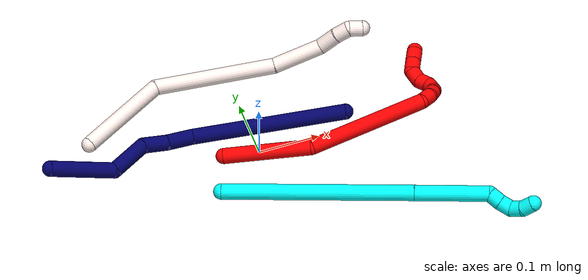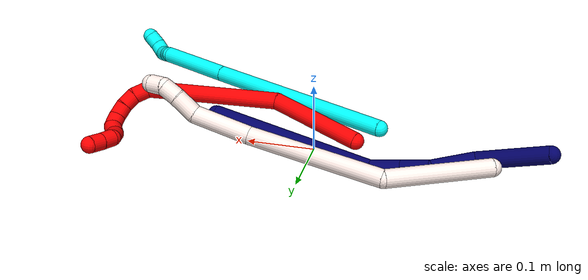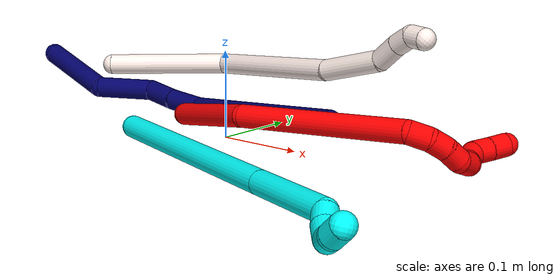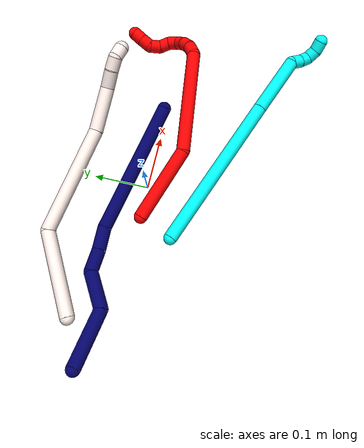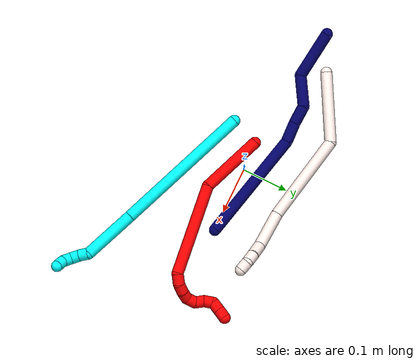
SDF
<sdf version="1.7">
 <world name="default">
  <model name="photoneo_s_sensor">
   <static>1</static>
   <pose>0 0 2 1.57079 1.57079 3.14159</pose>
   <link name="link">
    <inertial><mass>0.1</mass></inertial>
    <sensor name="sensor" type="depth">
     <update_rate>30</update_rate>
     <camera>
      <horizontal_fov>1.22</horizontal_fov>
      <image><width>1920</width><height>1200</height><format>B8G8R8</format></image>
      <clip><near>0.1</near><far>4</far></clip>
      <depth_camera><output>points</output></depth_camera>
     </camera>
     <plugin name="camera_plugin" filename="libgazebo_ros_depth_camera.so">
      <baseline>0.2</baseline>
      <alwaysOn>1</alwaysOn>
      <updateRate>0.0</updateRate>
      <cameraName>camera_ir</cameraName>
      <imageTopicName>/camera/color/image_raw</imageTopicName>
      <cameraInfoTopicName>/camera/color/camera_info</cameraInfoTopicName>
      <depthImageTopicName>/camera/depth/image_raw</depthImageTopicName>
      <depthImageCameraInfoTopicName>/camera/depth/camera_info</depthImageCameraInfoTopicName>
      <pointCloudTopicName>/camera/depth/points</pointCloudTopicName>
      <frameName>fr_optical</frameName>
      <pointCloudCutoff>0.1</pointCloudCutoff>
      <pointCloudCutoffMax>2.0</pointCloudCutoffMax>
      <distortionK1>0</distortionK1>
      <distortionK2>0</distortionK2>
      <distortionK3>0</distortionK3>
      <distortionT1>0</distortionT1>
      <distortionT2>0</distortionT2>
      <CxPrime>0</CxPrime>
      <Cx>0</Cx>
      <Cy>0</Cy>
      <focalLength>0</focalLength>
      <hackBaseline>0</hackBaseline>
     </plugin>
    </sensor>
   </link>
  </model>
  <model name="bin">
   <static>1</static>
   <link name="bottom">
    <collision name="collision-bottom">
     <pose>0 0 -0.01 0 -0 0</pose>
     <geometry><box><size>0.8 0.6 0.02</size></box></geometry>
     <surface>
      <friction><ode><mu>100</mu><mu2>100</mu2></ode></friction>
      <contact><collide_bitmask>65535</collide_bitmask></contact>
     </surface>
    </collision>
   </link>
   <link name="west_wall">
    <collision name="collision-west_wall">
     <pose>-0.41 0 0.1 0 -0 0</pose>
     <geometry><box><size>0.02 0.6 0.2</size></box></geometry>
     <surface>
      <friction><ode><mu>100</mu><mu2>100</mu2></ode></friction>
      <contact><collide_bitmask>65535</collide_bitmask></contact>
     </surface>
    </collision>
   </link>
   <link name="east_wall">
    <collision name="collision-east_wall">
     <pose>0.41 0 0.1 0 -0 0</pose>
     <geometry><box><size>0.02 0.6 0.2</size></box></geometry>
     <surface>
      <friction><ode><mu>100</mu><mu2>100</mu2></ode></friction>
      <contact><collide_bitmask>65535</collide_bitmask></contact>
     </surface>
    </collision>
   </link>
   <link name="south_wall">
    <collision name="collision-south_wall">
     <pose>0 -0.31 0.1 0 -0 0</pose>
     <geometry><box><size>0.8 0.02 0.2</size></box></geometry>
     <surface>
      <friction><ode><mu>100</mu><mu2>100</mu2></ode></friction>
      <contact><collide_bitmask>65535</collide_bitmask></contact>
     </surface>
    </collision>
   </link>
   <link name="north_wall">
    <collision name="collision-north_wall">
     <pose>0 0.31 0.1 0 -0 0</pose>
     <geometry><box><size>0.8 0.02 0.2</size></box></geometry>
     <surface>
      <friction><ode><mu>100</mu><mu2>100</mu2></ode></friction>
      <contact><collide_bitmask>65535</collide_bitmask></contact>
     </surface>
    </collision>
   </link>
  </model>
  <model name="2">
   <static>0</static>
   <link name="2">
    <collision name="collision-cylinder-e_1_1_4">
     <pose>0.027513 -0.011588 0.063522 0.180439 0.402797 0.036936</pose>
     <geometry><cylinder><radius>0.0125</radius><length>0.140375</length></cylinder></geometry>
     <surface>
      <friction><ode><mu>1.16</mu><mu2>1.16</mu2><slip1>0</slip1><slip2>0</slip2></ode></friction>
      <contact><ode><kp>1e+06</kp><kd>1</kd><max_vel>0</max_vel><min_depth>0.001</min_depth></ode></contact>
     </surface>
    </collision>
    <visual name="visual-cylinder-e_1_1_4">
     <pose>0.027513 -0.011588 0.063522 0.180439 0.402797 0.036936</pose>
     <geometry><cylinder><radius>0.0125</radius><length>0.140375</length></cylinder></geometry>
     <material><ambient>1 0 0 1</ambient></material>
    </visual>
    <collision name="collision-cylinder-e_2_4_5">
     <pose>0.054863 -0.012601 0.224173 -0.10845 -0.001672 9.1e-05</pose>
     <geometry><cylinder><radius>0.0125</radius><length>0.195407</length></cylinder></geometry>
     <surface>
      <friction><ode><mu>1.16</mu><mu2>1.16</mu2><slip1>0</slip1><slip2>0</slip2></ode></friction>
      <contact><ode><kp>1e+06</kp><kd>1</kd><max_vel>0</max_vel><min_depth>0.001</min_depth></ode></contact>
     </surface>
    </collision>
    <visual name="visual-cylinder-e_2_4_5">
     <pose>0.054863 -0.012601 0.224173 -0.10845 -0.001672 9.1e-05</pose>
     <geometry><cylinder><radius>0.0125</radius><length>0.195407</length></cylinder></geometry>
     <material><ambient>1 0 0 1</ambient></material>
    </visual>
    <collision name="collision-cylinder-e_3_5_6">
     <pose>0.051023 0.004199 0.330494 -0.595244 -0.31981 0.09886</pose>
     <geometry><cylinder><radius>0.0125</radius><length>0.023388</length></cylinder></geometry>
     <surface>
      <friction><ode><mu>1.16</mu><mu2>1.16</mu2><slip1>0</slip1><slip2>0</slip2></ode></friction>
      <contact><ode><kp>1e+06</kp><kd>1</kd><max_vel>0</max_vel><min_depth>0.001</min_depth></ode></contact>
     </surface>
    </collision>
    <visual name="visual-cylinder-e_3_5_6">
     <pose>0.051023 0.004199 0.330494 -0.595244 -0.31981 0.09886</pose>
     <geometry><cylinder><radius>0.0125</radius><length>0.023388</length></cylinder></geometry>
     <material><ambient>1 0 0 1</ambient></material>
    </visual>
    <collision name="collision-cylinder-e_4_6_7">
     <pose>0.0431 0.01813 0.34488 -0.977804 -0.428588 0.230528</pose>
     <geometry><cylinder><radius>0.0125</radius><length>0.020435</length></cylinder></geometry>
     <surface>
      <friction><ode><mu>1.16</mu><mu2>1.16</mu2><slip1>0</slip1><slip2>0</slip2></ode></friction>
      <contact><ode><kp>1e+06</kp><kd>1</kd><max_vel>0</max_vel><min_depth>0.001</min_depth></ode></contact>
     </surface>
    </collision>
    <visual name="visual-cylinder-e_4_6_7">
     <pose>0.0431 0.01813 0.34488 -0.977804 -0.428588 0.230528</pose>
     <geometry><cylinder><radius>0.0125</radius><length>0.020435</length></cylinder></geometry>
     <material><ambient>1 0 0 1</ambient></material>
    </visual>
    <collision name="collision-cylinder-e_5_7_8">
     <pose>0.035002 0.034515 0.353246 -1.22029 -0.395024 0.278019</pose>
     <geometry><cylinder><radius>0.0125</radius><length>0.02002</length></cylinder></geometry>
     <surface>
      <friction><ode><mu>1.16</mu><mu2>1.16</mu2><slip1>0</slip1><slip2>0</slip2></ode></friction>
      <contact><ode><kp>1e+06</kp><kd>1</kd><max_vel>0</max_vel><min_depth>0.001</min_depth></ode></contact>
     </surface>
    </collision>
    <visual name="visual-cylinder-e_5_7_8">
     <pose>0.035002 0.034515 0.353246 -1.22029 -0.395024 0.278019</pose>
     <geometry><cylinder><radius>0.0125</radius><length>0.02002</length></cylinder></geometry>
     <material><ambient>1 0 0 1</ambient></material>
    </visual>
    <collision name="collision-cylinder-e_6_8_9">
     <pose>0.02307 0.049292 0.356631 -1.53601 -0.923798 0.896325</pose>
     <geometry><cylinder><radius>0.0125</radius><length>0.020252</length></cylinder></geometry>
     <surface>
      <friction><ode><mu>1.16</mu><mu2>1.16</mu2><slip1>0</slip1><slip2>0</slip2></ode></friction>
      <contact><ode><kp>1e+06</kp><kd>1</kd><max_vel>0</max_vel><min_depth>0.001</min_depth></ode></contact>
     </surface>
    </collision>
    <visual name="visual-cylinder-e_6_8_9">
     <pose>0.02307 0.049292 0.356631 -1.53601 -0.923798 0.896325</pose>
     <geometry><cylinder><radius>0.0125</radius><length>0.020252</length></cylinder></geometry>
     <material><ambient>1 0 0 1</ambient></material>
    </visual>
    <collision name="collision-cylinder-e_7_9_10">
     <pose>0.006801 0.058241 0.351852 -2.62303 -0.958901 2.19807</pose>
     <geometry><cylinder><radius>0.0125</radius><length>0.020009</length></cylinder></geometry>
     <surface>
      <friction><ode><mu>1.16</mu><mu2>1.16</mu2><slip1>0</slip1><slip2>0</slip2></ode></friction>
      <contact><ode><kp>1e+06</kp><kd>1</kd><max_vel>0</max_vel><min_depth>0.001</min_depth></ode></contact>
     </surface>
    </collision>
    <visual name="visual-cylinder-e_7_9_10">
     <pose>0.006801 0.058241 0.351852 -2.62303 -0.958901 2.19807</pose>
     <geometry><cylinder><radius>0.0125</radius><length>0.020009</length></cylinder></geometry>
     <material><ambient>1 0 0 1</ambient></material>
    </visual>
    <collision name="collision-cylinder-e_8_10_11">
     <pose>-0.011347 0.061697 0.345639 -2.67963 -1.4347 2.61495</pose>
     <geometry><cylinder><radius>0.0125</radius><length>0.020103</length></cylinder></geometry>
     <surface>
      <friction><ode><mu>1.16</mu><mu2>1.16</mu2><slip1>0</slip1><slip2>0</slip2></ode></friction>
      <contact><ode><kp>1e+06</kp><kd>1</kd><max_vel>0</max_vel><min_depth>0.001</min_depth></ode></contact>
     </surface>
    </collision>
    <visual name="visual-cylinder-e_8_10_11">
     <pose>-0.011347 0.061697 0.345639 -2.67963 -1.4347 2.61495</pose>
     <geometry><cylinder><radius>0.0125</radius><length>0.020103</length></cylinder></geometry>
     <material><ambient>1 0 0 1</ambient></material>
    </visual>
    <collision name="collision-cylinder-e_9_11_12">
     <pose>-0.029478 0.06444 0.34978 -0.378973 -0.955947 0.198056</pose>
     <geometry><cylinder><radius>0.0125</radius><length>0.020009</length></cylinder></geometry>
     <surface>
      <friction><ode><mu>1.16</mu><mu2>1.16</mu2><slip1>0</slip1><slip2>0</slip2></ode></friction>
      <contact><ode><kp>1e+06</kp><kd>1</kd><max_vel>0</max_vel><min_depth>0.001</min_depth></ode></contact>
     </surface>
    </collision>
    <visual name="visual-cylinder-e_9_11_12">
     <pose>-0.029478 0.06444 0.34978 -0.378973 -0.955947 0.198056</pose>
     <geometry><cylinder><radius>0.0125</radius><length>0.020009</length></cylinder></geometry>
     <material><ambient>1 0 0 1</ambient></material>
    </visual>
    <collision name="collision-cylinder-e_10_12_2">
     <pose>-0.045762 0.068269 0.360739 -0.293814 -0.946145 0.151188</pose>
     <geometry><cylinder><radius>0.0125</radius><length>0.020001</length></cylinder></geometry>
     <surface>
      <friction><ode><mu>1.16</mu><mu2>1.16</mu2><slip1>0</slip1><slip2>0</slip2></ode></friction>
      <contact><ode><kp>1e+06</kp><kd>1</kd><max_vel>0</max_vel><min_depth>0.001</min_depth></ode></contact>
     </surface>
    </collision>
    <visual name="visual-cylinder-e_10_12_2">
     <pose>-0.045762 0.068269 0.360739 -0.293814 -0.946145 0.151188</pose>
     <geometry><cylinder><radius>0.0125</radius><length>0.020001</length></cylinder></geometry>
     <material><ambient>1 0 0 1</ambient></material>
    </visual>
    <collision name="collision-sphere-2">
     <pose>-0.053874 0.069963 0.366337 0 -0 0</pose>
     <geometry><sphere><radius>0.0125</radius></sphere></geometry>
     <surface>
      <friction><ode><mu>1.16</mu><mu2>1.16</mu2><slip1>0</slip1><slip2>0</slip2></ode></friction>
      <contact><ode><kp>1e+06</kp><kd>1</kd><max_vel>0</max_vel><min_depth>0.001</min_depth></ode></contact>
     </surface>
    </collision>
    <visual name="visual-sphere-2">
     <pose>-0.053874 0.069963 0.366337 0 -0 0</pose>
     <geometry><sphere><radius>0.0125</radius></sphere></geometry>
     <material><ambient>1 0 0 1</ambient></material>
    </visual>
    <collision name="collision-sphere-12">
     <pose>-0.03765 0.066575 0.355142 0 -0 0</pose>
     <geometry><sphere><radius>0.0125</radius></sphere></geometry>
     <surface>
      <friction><ode><mu>1.16</mu><mu2>1.16</mu2><slip1>0</slip1><slip2>0</slip2></ode></friction>
      <contact><ode><kp>1e+06</kp><kd>1</kd><max_vel>0</max_vel><min_depth>0.001</min_depth></ode></contact>
     </surface>
    </collision>
    <visual name="visual-sphere-12">
     <pose>-0.03765 0.066575 0.355142 0 -0 0</pose>
     <geometry><sphere><radius>0.0125</radius></sphere></geometry>
     <material><ambient>1 0 0 1</ambient></material>
    </visual>
    <collision name="collision-sphere-11">
     <pose>-0.021306 0.062305 0.344419 0 -0 0</pose>
     <geometry><sphere><radius>0.0125</radius></sphere></geometry>
     <surface>
      <friction><ode><mu>1.16</mu><mu2>1.16</mu2><slip1>0</slip1><slip2>0</slip2></ode></friction>
      <contact><ode><kp>1e+06</kp><kd>1</kd><max_vel>0</max_vel><min_depth>0.001</min_depth></ode></contact>
     </surface>
    </collision>
    <visual name="visual-sphere-11">
     <pose>-0.021306 0.062305 0.344419 0 -0 0</pose>
     <geometry><sphere><radius>0.0125</radius></sphere></geometry>
     <material><ambient>1 0 0 1</ambient></material>
    </visual>
    <collision name="collision-sphere-10">
     <pose>-0.001388 0.061089 0.34686 0 -0 0</pose>
     <geometry><sphere><radius>0.0125</radius></sphere></geometry>
     <surface>
      <friction><ode><mu>1.16</mu><mu2>1.16</mu2><slip1>0</slip1><slip2>0</slip2></ode></friction>
      <contact><ode><kp>1e+06</kp><kd>1</kd><max_vel>0</max_vel><min_depth>0.001</min_depth></ode></contact>
     </surface>
    </collision>
    <visual name="visual-sphere-10">
     <pose>-0.001388 0.061089 0.34686 0 -0 0</pose>
     <geometry><sphere><radius>0.0125</radius></sphere></geometry>
     <material><ambient>1 0 0 1</ambient></material>
    </visual>
    <collision name="collision-sphere-9">
     <pose>0.014991 0.055393 0.356843 0 -0 0</pose>
     <geometry><sphere><radius>0.0125</radius></sphere></geometry>
     <surface>
      <friction><ode><mu>1.16</mu><mu2>1.16</mu2><slip1>0</slip1><slip2>0</slip2></ode></friction>
      <contact><ode><kp>1e+06</kp><kd>1</kd><max_vel>0</max_vel><min_depth>0.001</min_depth></ode></contact>
     </surface>
    </collision>
    <visual name="visual-sphere-9">
     <pose>0.014991 0.055393 0.356843 0 -0 0</pose>
     <geometry><sphere><radius>0.0125</radius></sphere></geometry>
     <material><ambient>1 0 0 1</ambient></material>
    </visual>
    <collision name="collision-sphere-4">
     <pose>0.055026 -0.023176 0.127044 0 -0 0</pose>
     <geometry><sphere><radius>0.0125</radius></sphere></geometry>
     <surface>
      <friction><ode><mu>1.16</mu><mu2>1.16</mu2><slip1>0</slip1><slip2>0</slip2></ode></friction>
      <contact><ode><kp>1e+06</kp><kd>1</kd><max_vel>0</max_vel><min_depth>0.001</min_depth></ode></contact>
     </surface>
    </collision>
    <visual name="visual-sphere-4">
     <pose>0.055026 -0.023176 0.127044 0 -0 0</pose>
     <geometry><sphere><radius>0.0125</radius></sphere></geometry>
     <material><ambient>1 0 0 1</ambient></material>
    </visual>
    <collision name="collision-sphere-1">
     <geometry><sphere><radius>0.0125</radius></sphere></geometry>
     <surface>
      <friction><ode><mu>1.16</mu><mu2>1.16</mu2><slip1>0</slip1><slip2>0</slip2></ode></friction>
      <contact><ode><kp>1e+06</kp><kd>1</kd><max_vel>0</max_vel><min_depth>0.001</min_depth></ode></contact>
     </surface>
    </collision>
    <visual name="visual-sphere-1">
     <geometry><sphere><radius>0.0125</radius></sphere></geometry>
     <material><ambient>1 0 0 1</ambient></material>
    </visual>
    <collision name="collision-sphere-8">
     <pose>0.03115 0.043192 0.356418 0 -0 0</pose>
     <geometry><sphere><radius>0.0125</radius></sphere></geometry>
     <surface>
      <friction><ode><mu>1.16</mu><mu2>1.16</mu2><slip1>0</slip1><slip2>0</slip2></ode></friction>
      <contact><ode><kp>1e+06</kp><kd>1</kd><max_vel>0</max_vel><min_depth>0.001</min_depth></ode></contact>
     </surface>
    </collision>
    <visual name="visual-sphere-8">
     <pose>0.03115 0.043192 0.356418 0 -0 0</pose>
     <geometry><sphere><radius>0.0125</radius></sphere></geometry>
     <material><ambient>1 0 0 1</ambient></material>
    </visual>
    <collision name="collision-sphere-5">
     <pose>0.054699 -0.002025 0.321303 0 -0 0</pose>
     <geometry><sphere><radius>0.0125</radius></sphere></geometry>
     <surface>
      <friction><ode><mu>1.16</mu><mu2>1.16</mu2><slip1>0</slip1><slip2>0</slip2></ode></friction>
      <contact><ode><kp>1e+06</kp><kd>1</kd><max_vel>0</max_vel><min_depth>0.001</min_depth></ode></contact>
     </surface>
    </collision>
    <visual name="visual-sphere-5">
     <pose>0.054699 -0.002025 0.321303 0 -0 0</pose>
     <geometry><sphere><radius>0.0125</radius></sphere></geometry>
     <material><ambient>1 0 0 1</ambient></material>
    </visual>
    <collision name="collision-sphere-6">
     <pose>0.047347 0.010423 0.339686 0 -0 0</pose>
     <geometry><sphere><radius>0.0125</radius></sphere></geometry>
     <surface>
      <friction><ode><mu>1.16</mu><mu2>1.16</mu2><slip1>0</slip1><slip2>0</slip2></ode></friction>
      <contact><ode><kp>1e+06</kp><kd>1</kd><max_vel>0</max_vel><min_depth>0.001</min_depth></ode></contact>
     </surface>
    </collision>
    <visual name="visual-sphere-6">
     <pose>0.047347 0.010423 0.339686 0 -0 0</pose>
     <geometry><sphere><radius>0.0125</radius></sphere></geometry>
     <material><ambient>1 0 0 1</ambient></material>
    </visual>
    <collision name="collision-sphere-7">
     <pose>0.038854 0.025837 0.350073 0 -0 0</pose>
     <geometry><sphere><radius>0.0125</radius></sphere></geometry>
     <surface>
      <friction><ode><mu>1.16</mu><mu2>1.16</mu2><slip1>0</slip1><slip2>0</slip2></ode></friction>
      <contact><ode><kp>1e+06</kp><kd>1</kd><max_vel>0</max_vel><min_depth>0.001</min_depth></ode></contact>
     </surface>
    </collision>
    <visual name="visual-sphere-7">
     <pose>0.038854 0.025837 0.350073 0 -0 0</pose>
     <geometry><sphere><radius>0.0125</radius></sphere></geometry>
     <material><ambient>1 0 0 1</ambient></material>
    </visual>
    <inertial>
     <pose>0.032455 0.006259 0.219993 0 -0 0</pose>
     <mass>0.5</mass>
     <inertia>
      <ixx>0.000859</ixx>
      <ixy>0</ixy>
      <ixz>0</ixz>
      <iyy>0.000884</iyy>
      <iyz>0</iyz>
      <izz>-8.9e-05</izz>
     </inertia>
    </inertial>
   </link>
   <pose>-0.060299 -0.003982 0.019499 -1.41895 0.285543 -1.43433</pose>
  </model>
  <model name="3">
   <static>0</static>
   <link name="3">
    <collision name="collision-cylinder-e_1_1_4">
     <pose>0.137307 -0.061666 -0.004766 1.64794 1.14757 1.21904</pose>
     <geometry><cylinder><radius>0.0125</radius><length>0.301188</length></cylinder></geometry>
     <surface>
      <friction><ode><mu>1.16</mu><mu2>1.16</mu2><slip1>0</slip1><slip2>0</slip2></ode></friction>
      <contact><ode><kp>1e+06</kp><kd>1</kd><max_vel>0</max_vel><min_depth>0.001</min_depth></ode></contact>
     </surface>
    </collision>
    <visual name="visual-cylinder-e_1_1_4">
     <pose>0.137307 -0.061666 -0.004766 1.64794 1.14757 1.21904</pose>
     <geometry><cylinder><radius>0.0125</radius><length>0.301188</length></cylinder></geometry>
     <material><ambient>0.003922 1 0.996078 1</ambient></material>
    </visual>
    <collision name="collision-cylinder-e_2_4_5">
     <pose>0.32775 -0.147772 -0.011218 1.63964 1.13881 1.20225</pose>
     <geometry><cylinder><radius>0.0125</radius><length>0.117022</length></cylinder></geometry>
     <surface>
      <friction><ode><mu>1.16</mu><mu2>1.16</mu2><slip1>0</slip1><slip2>0</slip2></ode></friction>
      <contact><ode><kp>1e+06</kp><kd>1</kd><max_vel>0</max_vel><min_depth>0.001</min_depth></ode></contact>
     </surface>
    </collision>
    <visual name="visual-cylinder-e_2_4_5">
     <pose>0.32775 -0.147772 -0.011218 1.63964 1.13881 1.20225</pose>
     <geometry><cylinder><radius>0.0125</radius><length>0.117022</length></cylinder></geometry>
     <material><ambient>0.003922 1 0.996078 1</ambient></material>
    </visual>
    <collision name="collision-cylinder-e_3_5_6">
     <pose>0.386418 -0.179063 -0.018325 2.24018 0.564471 1.07969</pose>
     <geometry><cylinder><radius>0.0125</radius><length>0.020685</length></cylinder></geometry>
     <surface>
      <friction><ode><mu>1.16</mu><mu2>1.16</mu2><slip1>0</slip1><slip2>0</slip2></ode></friction>
      <contact><ode><kp>1e+06</kp><kd>1</kd><max_vel>0</max_vel><min_depth>0.001</min_depth></ode></contact>
     </surface>
    </collision>
    <visual name="visual-cylinder-e_3_5_6">
     <pose>0.386418 -0.179063 -0.018325 2.24018 0.564471 1.07969</pose>
     <geometry><cylinder><radius>0.0125</radius><length>0.020685</length></cylinder></geometry>
     <material><ambient>0.003922 1 0.996078 1</ambient></material>
    </visual>
    <collision name="collision-cylinder-e_4_6_7">
     <pose>0.398565 -0.192369 -0.028053 2.15918 0.705982 1.20623</pose>
     <geometry><cylinder><radius>0.0125</radius><length>0.020388</length></cylinder></geometry>
     <surface>
      <friction><ode><mu>1.16</mu><mu2>1.16</mu2><slip1>0</slip1><slip2>0</slip2></ode></friction>
      <contact><ode><kp>1e+06</kp><kd>1</kd><max_vel>0</max_vel><min_depth>0.001</min_depth></ode></contact>
     </surface>
    </collision>
    <visual name="visual-cylinder-e_4_6_7">
     <pose>0.398565 -0.192369 -0.028053 2.15918 0.705982 1.20623</pose>
     <geometry><cylinder><radius>0.0125</radius><length>0.020388</length></cylinder></geometry>
     <material><ambient>0.003922 1 0.996078 1</ambient></material>
    </visual>
    <collision name="collision-cylinder-e_5_7_8">
     <pose>0.411406 -0.206247 -0.029469 1.19973 0.66338 0.46268</pose>
     <geometry><cylinder><radius>0.0125</radius><length>0.020225</length></cylinder></geometry>
     <surface>
      <friction><ode><mu>1.16</mu><mu2>1.16</mu2><slip1>0</slip1><slip2>0</slip2></ode></friction>
      <contact><ode><kp>1e+06</kp><kd>1</kd><max_vel>0</max_vel><min_depth>0.001</min_depth></ode></contact>
     </surface>
    </collision>
    <visual name="visual-cylinder-e_5_7_8">
     <pose>0.411406 -0.206247 -0.029469 1.19973 0.66338 0.46268</pose>
     <geometry><cylinder><radius>0.0125</radius><length>0.020225</length></cylinder></geometry>
     <material><ambient>0.003922 1 0.996078 1</ambient></material>
    </visual>
    <collision name="collision-cylinder-e_6_8_2">
     <pose>0.424487 -0.218565 -0.020743 0.6976 0.7328 0.277309</pose>
     <geometry><cylinder><radius>0.0125</radius><length>0.020491</length></cylinder></geometry>
     <surface>
      <friction><ode><mu>1.16</mu><mu2>1.16</mu2><slip1>0</slip1><slip2>0</slip2></ode></friction>
      <contact><ode><kp>1e+06</kp><kd>1</kd><max_vel>0</max_vel><min_depth>0.001</min_depth></ode></contact>
     </surface>
    </collision>
    <visual name="visual-cylinder-e_6_8_2">
     <pose>0.424487 -0.218565 -0.020743 0.6976 0.7328 0.277309</pose>
     <geometry><cylinder><radius>0.0125</radius><length>0.020491</length></cylinder></geometry>
     <material><ambient>0.003922 1 0.996078 1</ambient></material>
    </visual>
    <collision name="collision-sphere-2">
     <pose>0.431341 -0.223457 -0.014907 0 -0 0</pose>
     <geometry><sphere><radius>0.0125</radius></sphere></geometry>
     <surface>
      <friction><ode><mu>1.16</mu><mu2>1.16</mu2><slip1>0</slip1><slip2>0</slip2></ode></friction>
      <contact><ode><kp>1e+06</kp><kd>1</kd><max_vel>0</max_vel><min_depth>0.001</min_depth></ode></contact>
     </surface>
    </collision>
    <visual name="visual-sphere-2">
     <pose>0.431341 -0.223457 -0.014907 0 -0 0</pose>
     <geometry><sphere><radius>0.0125</radius></sphere></geometry>
     <material><ambient>0.003922 1 0.996078 1</ambient></material>
    </visual>
    <collision name="collision-sphere-4">
     <pose>0.274614 -0.123332 -0.009533 0 -0 0</pose>
     <geometry><sphere><radius>0.0125</radius></sphere></geometry>
     <surface>
      <friction><ode><mu>1.16</mu><mu2>1.16</mu2><slip1>0</slip1><slip2>0</slip2></ode></friction>
      <contact><ode><kp>1e+06</kp><kd>1</kd><max_vel>0</max_vel><min_depth>0.001</min_depth></ode></contact>
     </surface>
    </collision>
    <visual name="visual-sphere-4">
     <pose>0.274614 -0.123332 -0.009533 0 -0 0</pose>
     <geometry><sphere><radius>0.0125</radius></sphere></geometry>
     <material><ambient>0.003922 1 0.996078 1</ambient></material>
    </visual>
    <collision name="collision-sphere-1">
     <geometry><sphere><radius>0.0125</radius></sphere></geometry>
     <surface>
      <friction><ode><mu>1.16</mu><mu2>1.16</mu2><slip1>0</slip1><slip2>0</slip2></ode></friction>
      <contact><ode><kp>1e+06</kp><kd>1</kd><max_vel>0</max_vel><min_depth>0.001</min_depth></ode></contact>
     </surface>
    </collision>
    <visual name="visual-sphere-1">
     <geometry><sphere><radius>0.0125</radius></sphere></geometry>
     <material><ambient>0.003922 1 0.996078 1</ambient></material>
    </visual>
    <collision name="collision-sphere-8">
     <pose>0.417633 -0.213673 -0.02658 0 -0 0</pose>
     <geometry><sphere><radius>0.0125</radius></sphere></geometry>
     <surface>
      <friction><ode><mu>1.16</mu><mu2>1.16</mu2><slip1>0</slip1><slip2>0</slip2></ode></friction>
      <contact><ode><kp>1e+06</kp><kd>1</kd><max_vel>0</max_vel><min_depth>0.001</min_depth></ode></contact>
     </surface>
    </collision>
    <visual name="visual-sphere-8">
     <pose>0.417633 -0.213673 -0.02658 0 -0 0</pose>
     <geometry><sphere><radius>0.0125</radius></sphere></geometry>
     <material><ambient>0.003922 1 0.996078 1</ambient></material>
    </visual>
    <collision name="collision-sphere-5">
     <pose>0.380886 -0.172211 -0.012903 0 -0 0</pose>
     <geometry><sphere><radius>0.0125</radius></sphere></geometry>
     <surface>
      <friction><ode><mu>1.16</mu><mu2>1.16</mu2><slip1>0</slip1><slip2>0</slip2></ode></friction>
      <contact><ode><kp>1e+06</kp><kd>1</kd><max_vel>0</max_vel><min_depth>0.001</min_depth></ode></contact>
     </surface>
    </collision>
    <visual name="visual-sphere-5">
     <pose>0.380886 -0.172211 -0.012903 0 -0 0</pose>
     <geometry><sphere><radius>0.0125</radius></sphere></geometry>
     <material><ambient>0.003922 1 0.996078 1</ambient></material>
    </visual>
    <collision name="collision-sphere-6">
     <pose>0.391951 -0.185916 -0.023747 0 -0 0</pose>
     <geometry><sphere><radius>0.0125</radius></sphere></geometry>
     <surface>
      <friction><ode><mu>1.16</mu><mu2>1.16</mu2><slip1>0</slip1><slip2>0</slip2></ode></friction>
      <contact><ode><kp>1e+06</kp><kd>1</kd><max_vel>0</max_vel><min_depth>0.001</min_depth></ode></contact>
     </surface>
    </collision>
    <visual name="visual-sphere-6">
     <pose>0.391951 -0.185916 -0.023747 0 -0 0</pose>
     <geometry><sphere><radius>0.0125</radius></sphere></geometry>
     <material><ambient>0.003922 1 0.996078 1</ambient></material>
    </visual>
    <collision name="collision-sphere-7">
     <pose>0.405179 -0.198822 -0.032358 0 -0 0</pose>
     <geometry><sphere><radius>0.0125</radius></sphere></geometry>
     <surface>
      <friction><ode><mu>1.16</mu><mu2>1.16</mu2><slip1>0</slip1><slip2>0</slip2></ode></friction>
      <contact><ode><kp>1e+06</kp><kd>1</kd><max_vel>0</max_vel><min_depth>0.001</min_depth></ode></contact>
     </surface>
    </collision>
    <visual name="visual-sphere-7">
     <pose>0.405179 -0.198822 -0.032358 0 -0 0</pose>
     <geometry><sphere><radius>0.0125</radius></sphere></geometry>
     <material><ambient>0.003922 1 0.996078 1</ambient></material>
    </visual>
    <inertial>
     <pose>0.225694 -0.104283 -0.009441 0 -0 0</pose>
     <mass>0.5</mass>
     <inertia>
      <ixx>0.001321</ixx>
      <ixy>0</ixy>
      <ixz>0</ixz>
      <iyy>0.00293</iyy>
      <iyz>0</iyz>
      <izz>-0.001218</izz>
     </inertia>
    </inertial>
   </link>
   <pose>-0.084381 -0.064163 0.011497 -0.299465 0.068349 0.046267</pose>
  </model>
  <model name="7">
   <static>0</static>
   <link name="7">
    <collision name="collision-cylinder-e_1_1_4">
     <pose>-0.113227 0.041161 -0.024007 -2.09881 -1.17245 1.71538</pose>
     <geometry><cylinder><radius>0.0125</radius><length>0.24569</length></cylinder></geometry>
     <surface>
      <friction><ode><mu>1.16</mu><mu2>1.16</mu2><slip1>0</slip1><slip2>0</slip2></ode></friction>
      <contact><ode><kp>1e+06</kp><kd>1</kd><max_vel>0</max_vel><min_depth>0.001</min_depth></ode></contact>
     </surface>
    </collision>
    <visual name="visual-cylinder-e_1_1_4">
     <pose>-0.113227 0.041161 -0.024007 -2.09881 -1.17245 1.71538</pose>
     <geometry><cylinder><radius>0.0125</radius><length>0.24569</length></cylinder></geometry>
     <material><ambient>0.003922 0 0.403922 1</ambient></material>
    </visual>
    <collision name="collision-cylinder-e_2_4_5">
     <pose>-0.243424 0.095558 -0.04881 -1.63084 -0.907555 0.955763</pose>
     <geometry><cylinder><radius>0.0125</radius><length>0.043072</length></cylinder></geometry>
     <surface>
      <friction><ode><mu>1.16</mu><mu2>1.16</mu2><slip1>0</slip1><slip2>0</slip2></ode></friction>
      <contact><ode><kp>1e+06</kp><kd>1</kd><max_vel>0</max_vel><min_depth>0.001</min_depth></ode></contact>
     </surface>
    </collision>
    <visual name="visual-cylinder-e_2_4_5">
     <pose>-0.243424 0.095558 -0.04881 -1.63084 -0.907555 0.955763</pose>
     <geometry><cylinder><radius>0.0125</radius><length>0.043072</length></cylinder></geometry>
     <material><ambient>0.003922 0 0.403922 1</ambient></material>
    </visual>
    <collision name="collision-cylinder-e_3_5_6">
     <pose>-0.275895 0.121135 -0.052393 -1.79291 -0.886214 1.07157</pose>
     <geometry><cylinder><radius>0.0125</radius><length>0.040018</length></cylinder></geometry>
     <surface>
      <friction><ode><mu>1.16</mu><mu2>1.16</mu2><slip1>0</slip1><slip2>0</slip2></ode></friction>
      <contact><ode><kp>1e+06</kp><kd>1</kd><max_vel>0</max_vel><min_depth>0.001</min_depth></ode></contact>
     </surface>
    </collision>
    <visual name="visual-cylinder-e_3_5_6">
     <pose>-0.275895 0.121135 -0.052393 -1.79291 -0.886214 1.07157</pose>
     <geometry><cylinder><radius>0.0125</radius><length>0.040018</length></cylinder></geometry>
     <material><ambient>0.003922 0 0.403922 1</ambient></material>
    </visual>
    <collision name="collision-cylinder-e_4_6_7">
     <pose>-0.312749 0.154668 -0.040503 -0.965069 -0.691803 0.373179</pose>
     <geometry><cylinder><radius>0.0125</radius><length>0.066947</length></cylinder></geometry>
     <surface>
      <friction><ode><mu>1.16</mu><mu2>1.16</mu2><slip1>0</slip1><slip2>0</slip2></ode></friction>
      <contact><ode><kp>1e+06</kp><kd>1</kd><max_vel>0</max_vel><min_depth>0.001</min_depth></ode></contact>
     </surface>
    </collision>
    <visual name="visual-cylinder-e_4_6_7">
     <pose>-0.312749 0.154668 -0.040503 -0.965069 -0.691803 0.373179</pose>
     <geometry><cylinder><radius>0.0125</radius><length>0.066947</length></cylinder></geometry>
     <material><ambient>0.003922 0 0.403922 1</ambient></material>
    </visual>
    <collision name="collision-cylinder-e_5_7_2">
     <pose>-0.370231 0.210963 -0.03927 -1.93653 -0.765575 1.05918</pose>
     <geometry><cylinder><radius>0.0125</radius><length>0.104274</length></cylinder></geometry>
     <surface>
      <friction><ode><mu>1.16</mu><mu2>1.16</mu2><slip1>0</slip1><slip2>0</slip2></ode></friction>
      <contact><ode><kp>1e+06</kp><kd>1</kd><max_vel>0</max_vel><min_depth>0.001</min_depth></ode></contact>
     </surface>
    </collision>
    <visual name="visual-cylinder-e_5_7_2">
     <pose>-0.370231 0.210963 -0.03927 -1.93653 -0.765575 1.05918</pose>
     <geometry><cylinder><radius>0.0125</radius><length>0.104274</length></cylinder></geometry>
     <material><ambient>0.003922 0 0.403922 1</ambient></material>
    </visual>
    <collision name="collision-sphere-2">
     <pose>-0.406359 0.246067 -0.052714 0 -0 0</pose>
     <geometry><sphere><radius>0.0125</radius></sphere></geometry>
     <surface>
      <friction><ode><mu>1.16</mu><mu2>1.16</mu2><slip1>0</slip1><slip2>0</slip2></ode></friction>
      <contact><ode><kp>1e+06</kp><kd>1</kd><max_vel>0</max_vel><min_depth>0.001</min_depth></ode></contact>
     </surface>
    </collision>
    <visual name="visual-sphere-2">
     <pose>-0.406359 0.246067 -0.052714 0 -0 0</pose>
     <geometry><sphere><radius>0.0125</radius></sphere></geometry>
     <material><ambient>0.003922 0 0.403922 1</ambient></material>
    </visual>
    <collision name="collision-sphere-7">
     <pose>-0.334102 0.17586 -0.025827 0 -0 0</pose>
     <geometry><sphere><radius>0.0125</radius></sphere></geometry>
     <surface>
      <friction><ode><mu>1.16</mu><mu2>1.16</mu2><slip1>0</slip1><slip2>0</slip2></ode></friction>
      <contact><ode><kp>1e+06</kp><kd>1</kd><max_vel>0</max_vel><min_depth>0.001</min_depth></ode></contact>
     </surface>
    </collision>
    <visual name="visual-sphere-7">
     <pose>-0.334102 0.17586 -0.025827 0 -0 0</pose>
     <geometry><sphere><radius>0.0125</radius></sphere></geometry>
     <material><ambient>0.003922 0 0.403922 1</ambient></material>
    </visual>
    <collision name="collision-sphere-6">
     <pose>-0.291395 0.133477 -0.05518 0 -0 0</pose>
     <geometry><sphere><radius>0.0125</radius></sphere></geometry>
     <surface>
      <friction><ode><mu>1.16</mu><mu2>1.16</mu2><slip1>0</slip1><slip2>0</slip2></ode></friction>
      <contact><ode><kp>1e+06</kp><kd>1</kd><max_vel>0</max_vel><min_depth>0.001</min_depth></ode></contact>
     </surface>
    </collision>
    <visual name="visual-sphere-6">
     <pose>-0.291395 0.133477 -0.05518 0 -0 0</pose>
     <geometry><sphere><radius>0.0125</radius></sphere></geometry>
     <material><ambient>0.003922 0 0.403922 1</ambient></material>
    </visual>
    <collision name="collision-sphere-5">
     <pose>-0.260394 0.108793 -0.049606 0 -0 0</pose>
     <geometry><sphere><radius>0.0125</radius></sphere></geometry>
     <surface>
      <friction><ode><mu>1.16</mu><mu2>1.16</mu2><slip1>0</slip1><slip2>0</slip2></ode></friction>
      <contact><ode><kp>1e+06</kp><kd>1</kd><max_vel>0</max_vel><min_depth>0.001</min_depth></ode></contact>
     </surface>
    </collision>
    <visual name="visual-sphere-5">
     <pose>-0.260394 0.108793 -0.049606 0 -0 0</pose>
     <geometry><sphere><radius>0.0125</radius></sphere></geometry>
     <material><ambient>0.003922 0 0.403922 1</ambient></material>
    </visual>
    <collision name="collision-sphere-1">
     <geometry><sphere><radius>0.0125</radius></sphere></geometry>
     <surface>
      <friction><ode><mu>1.16</mu><mu2>1.16</mu2><slip1>0</slip1><slip2>0</slip2></ode></friction>
      <contact><ode><kp>1e+06</kp><kd>1</kd><max_vel>0</max_vel><min_depth>0.001</min_depth></ode></contact>
     </surface>
    </collision>
    <visual name="visual-sphere-1">
     <geometry><sphere><radius>0.0125</radius></sphere></geometry>
     <material><ambient>0.003922 0 0.403922 1</ambient></material>
    </visual>
    <collision name="collision-sphere-4">
     <pose>-0.226453 0.082322 -0.048014 0 -0 0</pose>
     <geometry><sphere><radius>0.0125</radius></sphere></geometry>
     <surface>
      <friction><ode><mu>1.16</mu><mu2>1.16</mu2><slip1>0</slip1><slip2>0</slip2></ode></friction>
      <contact><ode><kp>1e+06</kp><kd>1</kd><max_vel>0</max_vel><min_depth>0.001</min_depth></ode></contact>
     </surface>
    </collision>
    <visual name="visual-sphere-4">
     <pose>-0.226453 0.082322 -0.048014 0 -0 0</pose>
     <geometry><sphere><radius>0.0125</radius></sphere></geometry>
     <material><ambient>0.003922 0 0.403922 1</ambient></material>
    </visual>
    <inertial>
     <pose>-0.217774 0.102858 -0.033807 0 -0 0</pose>
     <mass>0.5</mass>
     <inertia>
      <ixx>0.000514</ixx>
      <ixy>0</ixy>
      <ixz>0</ixz>
      <iyy>0.001714</iyy>
      <iyz>0</iyz>
      <izz>0.000731</izz>
     </inertia>
    </inertial>
   </link>
   <pose>0.145668 0.002519 0.040433 2.0099 -0.511417 -0.182578</pose>
  </model>
  <model name="11">
   <static>0</static>
   <link name="11">
    <collision name="collision-cylinder-e_1_1_4">
     <pose>0.057519 -0.006905 0.047926 0.143092 0.871069 0.066675</pose>
     <geometry><cylinder><radius>0.0125</radius><length>0.150372</length></cylinder></geometry>
     <surface>
      <friction><ode><mu>1.16</mu><mu2>1.16</mu2><slip1>0</slip1><slip2>0</slip2></ode></friction>
      <contact><ode><kp>1e+06</kp><kd>1</kd><max_vel>0</max_vel><min_depth>0.001</min_depth></ode></contact>
     </surface>
    </collision>
    <visual name="visual-cylinder-e_1_1_4">
     <pose>0.057519 -0.006905 0.047926 0.143092 0.871069 0.066675</pose>
     <geometry><cylinder><radius>0.0125</radius><length>0.150372</length></cylinder></geometry>
     <material><ambient>1 0.933333 0.909804 1</ambient></material>
    </visual>
    <collision name="collision-cylinder-e_2_4_5">
     <pose>0.167688 -0.081503 0.13926 1.00059 0.579692 0.323247</pose>
     <geometry><cylinder><radius>0.0125</radius><length>0.192238</length></cylinder></geometry>
     <surface>
      <friction><ode><mu>1.16</mu><mu2>1.16</mu2><slip1>0</slip1><slip2>0</slip2></ode></friction>
      <contact><ode><kp>1e+06</kp><kd>1</kd><max_vel>0</max_vel><min_depth>0.001</min_depth></ode></contact>
     </surface>
    </collision>
    <visual name="visual-cylinder-e_2_4_5">
     <pose>0.167688 -0.081503 0.13926 1.00059 0.579692 0.323247</pose>
     <geometry><cylinder><radius>0.0125</radius><length>0.192238</length></cylinder></geometry>
     <material><ambient>1 0.933333 0.909804 1</ambient></material>
    </visual>
    <collision name="collision-cylinder-e_3_5_6">
     <pose>0.240191 -0.173094 0.207957 0.757128 0.518506 0.210206</pose>
     <geometry><cylinder><radius>0.0125</radius><length>0.080116</length></cylinder></geometry>
     <surface>
      <friction><ode><mu>1.16</mu><mu2>1.16</mu2><slip1>0</slip1><slip2>0</slip2></ode></friction>
      <contact><ode><kp>1e+06</kp><kd>1</kd><max_vel>0</max_vel><min_depth>0.001</min_depth></ode></contact>
     </surface>
    </collision>
    <visual name="visual-cylinder-e_3_5_6">
     <pose>0.240191 -0.173094 0.207957 0.757128 0.518506 0.210206</pose>
     <geometry><cylinder><radius>0.0125</radius><length>0.080116</length></cylinder></geometry>
     <material><ambient>1 0.933333 0.909804 1</ambient></material>
    </visual>
    <collision name="collision-cylinder-e_4_6_7">
     <pose>0.261639 -0.206548 0.246379 0.629102 0.097954 0.031893</pose>
     <geometry><cylinder><radius>0.0125</radius><length>0.032643</length></cylinder></geometry>
     <surface>
      <friction><ode><mu>1.16</mu><mu2>1.16</mu2><slip1>0</slip1><slip2>0</slip2></ode></friction>
      <contact><ode><kp>1e+06</kp><kd>1</kd><max_vel>0</max_vel><min_depth>0.001</min_depth></ode></contact>
     </surface>
    </collision>
    <visual name="visual-cylinder-e_4_6_7">
     <pose>0.261639 -0.206548 0.246379 0.629102 0.097954 0.031893</pose>
     <geometry><cylinder><radius>0.0125</radius><length>0.032643</length></cylinder></geometry>
     <material><ambient>1 0.933333 0.909804 1</ambient></material>
    </visual>
    <collision name="collision-cylinder-e_5_7_8">
     <pose>0.265667 -0.223624 0.268144 0.716551 0.209343 0.078632</pose>
     <geometry><cylinder><radius>0.0125</radius><length>0.023404</length></cylinder></geometry>
     <surface>
      <friction><ode><mu>1.16</mu><mu2>1.16</mu2><slip1>0</slip1><slip2>0</slip2></ode></friction>
      <contact><ode><kp>1e+06</kp><kd>1</kd><max_vel>0</max_vel><min_depth>0.001</min_depth></ode></contact>
     </surface>
    </collision>
    <visual name="visual-cylinder-e_5_7_8">
     <pose>0.265667 -0.223624 0.268144 0.716551 0.209343 0.078632</pose>
     <geometry><cylinder><radius>0.0125</radius><length>0.023404</length></cylinder></geometry>
     <material><ambient>1 0.933333 0.909804 1</ambient></material>
    </visual>
    <collision name="collision-cylinder-e_6_8_2">
     <pose>0.274416 -0.238997 0.280098 1.17058 0.637474 0.430621</pose>
     <geometry><cylinder><radius>0.0125</radius><length>0.021228</length></cylinder></geometry>
     <surface>
      <friction><ode><mu>1.16</mu><mu2>1.16</mu2><slip1>0</slip1><slip2>0</slip2></ode></friction>
      <contact><ode><kp>1e+06</kp><kd>1</kd><max_vel>0</max_vel><min_depth>0.001</min_depth></ode></contact>
     </surface>
    </collision>
    <visual name="visual-cylinder-e_6_8_2">
     <pose>0.274416 -0.238997 0.280098 1.17058 0.637474 0.430621</pose>
     <geometry><cylinder><radius>0.0125</radius><length>0.021228</length></cylinder></geometry>
     <material><ambient>1 0.933333 0.909804 1</ambient></material>
    </visual>
    <collision name="collision-sphere-2">
     <pose>0.280733 -0.246852 0.283422 0 -0 0</pose>
     <geometry><sphere><radius>0.0125</radius></sphere></geometry>
     <surface>
      <friction><ode><mu>1.16</mu><mu2>1.16</mu2><slip1>0</slip1><slip2>0</slip2></ode></friction>
      <contact><ode><kp>1e+06</kp><kd>1</kd><max_vel>0</max_vel><min_depth>0.001</min_depth></ode></contact>
     </surface>
    </collision>
    <visual name="visual-sphere-2">
     <pose>0.280733 -0.246852 0.283422 0 -0 0</pose>
     <geometry><sphere><radius>0.0125</radius></sphere></geometry>
     <material><ambient>1 0.933333 0.909804 1</ambient></material>
    </visual>
    <collision name="collision-sphere-4">
     <pose>0.115037 -0.01381 0.095851 0 -0 0</pose>
     <geometry><sphere><radius>0.0125</radius></sphere></geometry>
     <surface>
      <friction><ode><mu>1.16</mu><mu2>1.16</mu2><slip1>0</slip1><slip2>0</slip2></ode></friction>
      <contact><ode><kp>1e+06</kp><kd>1</kd><max_vel>0</max_vel><min_depth>0.001</min_depth></ode></contact>
     </surface>
    </collision>
    <visual name="visual-sphere-4">
     <pose>0.115037 -0.01381 0.095851 0 -0 0</pose>
     <geometry><sphere><radius>0.0125</radius></sphere></geometry>
     <material><ambient>1 0.933333 0.909804 1</ambient></material>
    </visual>
    <collision name="collision-sphere-1">
     <geometry><sphere><radius>0.0125</radius></sphere></geometry>
     <surface>
      <friction><ode><mu>1.16</mu><mu2>1.16</mu2><slip1>0</slip1><slip2>0</slip2></ode></friction>
      <contact><ode><kp>1e+06</kp><kd>1</kd><max_vel>0</max_vel><min_depth>0.001</min_depth></ode></contact>
     </surface>
    </collision>
    <visual name="visual-sphere-1">
     <geometry><sphere><radius>0.0125</radius></sphere></geometry>
     <material><ambient>1 0.933333 0.909804 1</ambient></material>
    </visual>
    <collision name="collision-sphere-8">
     <pose>0.268099 -0.231142 0.276775 0 -0 0</pose>
     <geometry><sphere><radius>0.0125</radius></sphere></geometry>
     <surface>
      <friction><ode><mu>1.16</mu><mu2>1.16</mu2><slip1>0</slip1><slip2>0</slip2></ode></friction>
      <contact><ode><kp>1e+06</kp><kd>1</kd><max_vel>0</max_vel><min_depth>0.001</min_depth></ode></contact>
     </surface>
    </collision>
    <visual name="visual-sphere-8">
     <pose>0.268099 -0.231142 0.276775 0 -0 0</pose>
     <geometry><sphere><radius>0.0125</radius></sphere></geometry>
     <material><ambient>1 0.933333 0.909804 1</ambient></material>
    </visual>
    <collision name="collision-sphere-5">
     <pose>0.220339 -0.149197 0.18267 0 -0 0</pose>
     <geometry><sphere><radius>0.0125</radius></sphere></geometry>
     <surface>
      <friction><ode><mu>1.16</mu><mu2>1.16</mu2><slip1>0</slip1><slip2>0</slip2></ode></friction>
      <contact><ode><kp>1e+06</kp><kd>1</kd><max_vel>0</max_vel><min_depth>0.001</min_depth></ode></contact>
     </surface>
    </collision>
    <visual name="visual-sphere-5">
     <pose>0.220339 -0.149197 0.18267 0 -0 0</pose>
     <geometry><sphere><radius>0.0125</radius></sphere></geometry>
     <material><ambient>1 0.933333 0.909804 1</ambient></material>
    </visual>
    <collision name="collision-sphere-6">
     <pose>0.260043 -0.19699 0.233245 0 -0 0</pose>
     <geometry><sphere><radius>0.0125</radius></sphere></geometry>
     <surface>
      <friction><ode><mu>1.16</mu><mu2>1.16</mu2><slip1>0</slip1><slip2>0</slip2></ode></friction>
      <contact><ode><kp>1e+06</kp><kd>1</kd><max_vel>0</max_vel><min_depth>0.001</min_depth></ode></contact>
     </surface>
    </collision>
    <visual name="visual-sphere-6">
     <pose>0.260043 -0.19699 0.233245 0 -0 0</pose>
     <geometry><sphere><radius>0.0125</radius></sphere></geometry>
     <material><ambient>1 0.933333 0.909804 1</ambient></material>
    </visual>
    <collision name="collision-sphere-7">
     <pose>0.263235 -0.216106 0.259512 0 -0 0</pose>
     <geometry><sphere><radius>0.0125</radius></sphere></geometry>
     <surface>
      <friction><ode><mu>1.16</mu><mu2>1.16</mu2><slip1>0</slip1><slip2>0</slip2></ode></friction>
      <contact><ode><kp>1e+06</kp><kd>1</kd><max_vel>0</max_vel><min_depth>0.001</min_depth></ode></contact>
     </surface>
    </collision>
    <visual name="visual-sphere-7">
     <pose>0.263235 -0.216106 0.259512 0 -0 0</pose>
     <geometry><sphere><radius>0.0125</radius></sphere></geometry>
     <material><ambient>1 0.933333 0.909804 1</ambient></material>
    </visual>
    <inertial>
     <pose>0.161423 -0.095246 0.141805 0 -0 0</pose>
     <mass>0.5</mass>
     <inertia>
      <ixx>0.000911</ixx>
      <ixy>0</ixy>
      <ixz>0</ixz>
      <iyy>0.000886</iyy>
      <iyz>0</iyz>
      <izz>-7.1e-05</izz>
     </inertia>
    </inertial>
   </link>
   <pose>-0.257645 0.067336 0.045088 -0.14519 0.657677 0.505781</pose>
  </model>
 </world>
</sdf>
